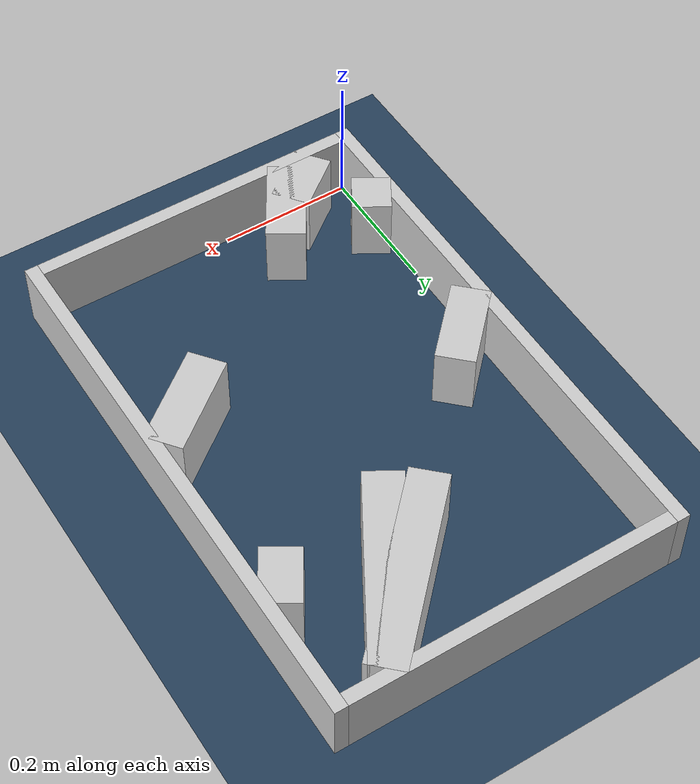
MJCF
<?xml version="1.0" ?>
<mujoco model="generated_real_template">
  <compiler angle="degree"/>
  <option timestep="0.002" integrator="implicitfast" iterations="100" cone="elliptic"/>
  <default>
    <geom density="1"/>
  </default>
  <asset>
    <texture builtin="gradient" height="3072" rgb1="0.3 0.5 0.7" rgb2="0 0 0" type="skybox" width="512"/>
    <texture builtin="checker" height="300" mark="edge" markrgb="0.8 0.8 0.8" name="groundplane" rgb1="0.2 0.3 0.4" rgb2="0.1 0.2 0.3" type="2d" width="300"/>
    <material name="groundplane" reflectance="0.2" texrepeat="5 5" texture="groundplane" texuniform="true"/>
  </asset>
  <worldbody>
    <light dir="0 0 -1" directional="true" pos="0 0 1.5"/>
    <geom name="floor" type="plane" condim="4" friction="0.5 0.005 0.001" material="groundplane" size="0 0 0.05"/>
    <body name="walls">
      <geom name="wall_boundary_left" type="box" condim="4" friction="1.0 0.005 0.0001" rgba="0.8 0.8 0.8 1" pos="-0.010000 0.387500 0.050000" euler="0 0 0.000000" size="0.010000 0.407500 0.050000"/>
      <geom name="wall_boundary_right" type="box" condim="4" friction="1.0 0.005 0.0001" rgba="0.8 0.8 0.8 1" pos="0.500000 0.387500 0.050000" euler="0 0 0.000000" size="0.010000 0.407500 0.050000"/>
      <geom name="wall_boundary_bottom" type="box" condim="4" friction="1.0 0.005 0.0001" rgba="0.8 0.8 0.8 1" pos="0.245000 -0.010000 0.050000" euler="0 0 0.000000" size="0.245000 0.010000 0.050000"/>
      <geom name="wall_boundary_top" type="box" condim="4" friction="1.0 0.005 0.0001" rgba="0.8 0.8 0.8 1" pos="0.245000 0.785000 0.050000" euler="0 0 0.000000" size="0.245000 0.010000 0.050000"/>
      <geom name="wall_inner_1_1" type="box" condim="4" friction="1.0 0.005 0.0001" rgba="0.8 0.8 0.8 1" pos="0.344627 0.653066 0.050000" euler="0 0 -120.875062" size="0.142066 0.028500 0.050000"/>
      <geom name="wall_inner_1_2" type="box" condim="4" friction="1.0 0.005 0.0001" rgba="0.8 0.8 0.8 1" pos="0.019395 0.109105 0.050000" euler="0 0 -120.875062" size="0.029099 0.028500 0.050000"/>
      <geom name="wall_inner_2_1" type="box" condim="4" friction="1.0 0.005 0.0001" rgba="0.8 0.8 0.8 1" pos="0.464102 0.595945 0.050000" euler="0 0 -121.699063" size="0.041200 0.028500 0.050000"/>
      <geom name="wall_inner_2_2" type="box" condim="4" friction="1.0 0.005 0.0001" rgba="0.8 0.8 0.8 1" pos="0.130950 0.056506 0.050000" euler="0 0 -121.699063" size="0.066414 0.028500 0.050000"/>
      <geom name="wall_inner_3_1" type="box" condim="4" friction="1.0 0.005 0.0001" rgba="0.8 0.8 0.8 1" pos="0.323200 0.668917 0.050000" euler="0 0 -134.112821" size="0.147753 0.028500 0.050000"/>
      <geom name="wall_inner_3_2" type="box" condim="4" friction="1.0 0.005 0.0001" rgba="0.8 0.8 0.8 1" pos="0.045109 0.382078 0.050000" euler="0 0 -134.112821" size="0.064140 0.028500 0.050000"/>
      <geom name="wall_inner_4_1" type="box" condim="4" friction="1.0 0.005 0.0001" rgba="0.8 0.8 0.8 1" pos="0.430106 0.295585 0.050000" euler="0 0 -142.130396" size="0.075872 0.028500 0.050000"/>
      <geom name="wall_inner_4_2" type="box" condim="4" friction="1.0 0.005 0.0001" rgba="0.8 0.8 0.8 1" pos="0.088917 0.030267 0.050000" euler="0 0 -142.130396" size="0.045234 0.028500 0.050000"/>
    </body>
  </worldbody>
</mujoco>
